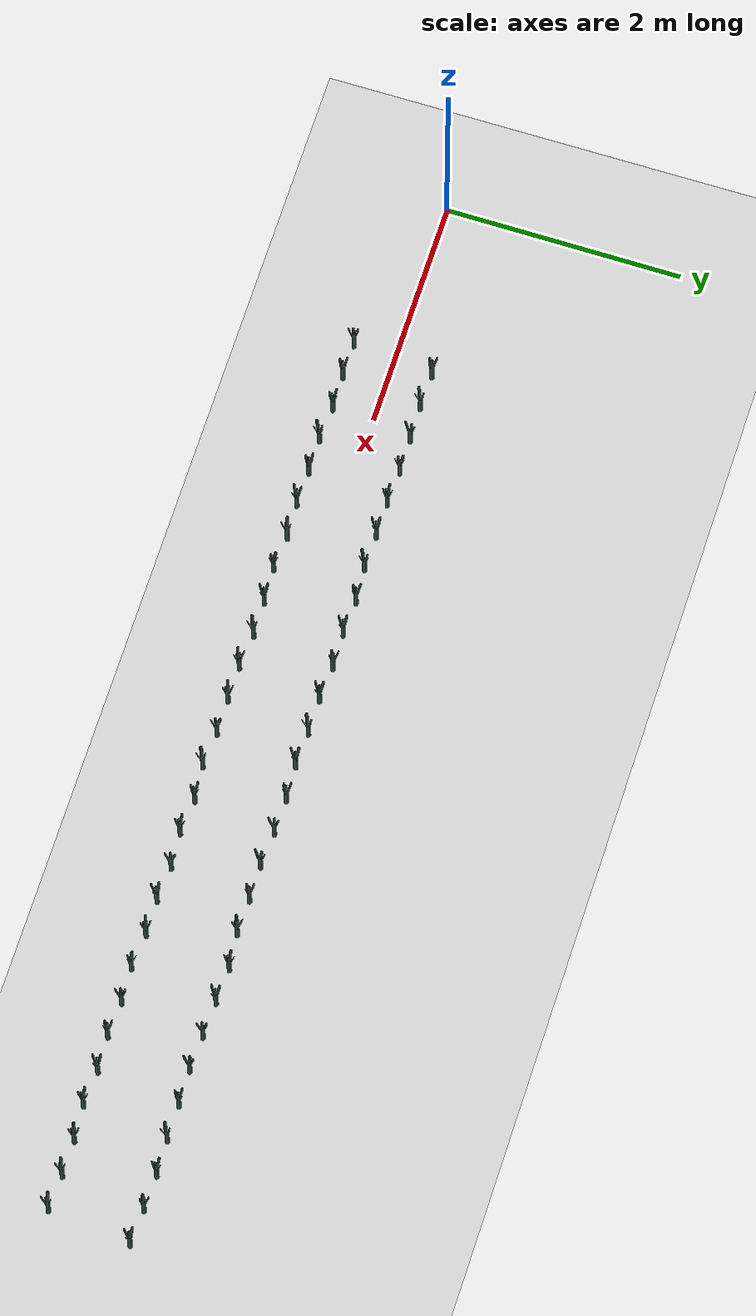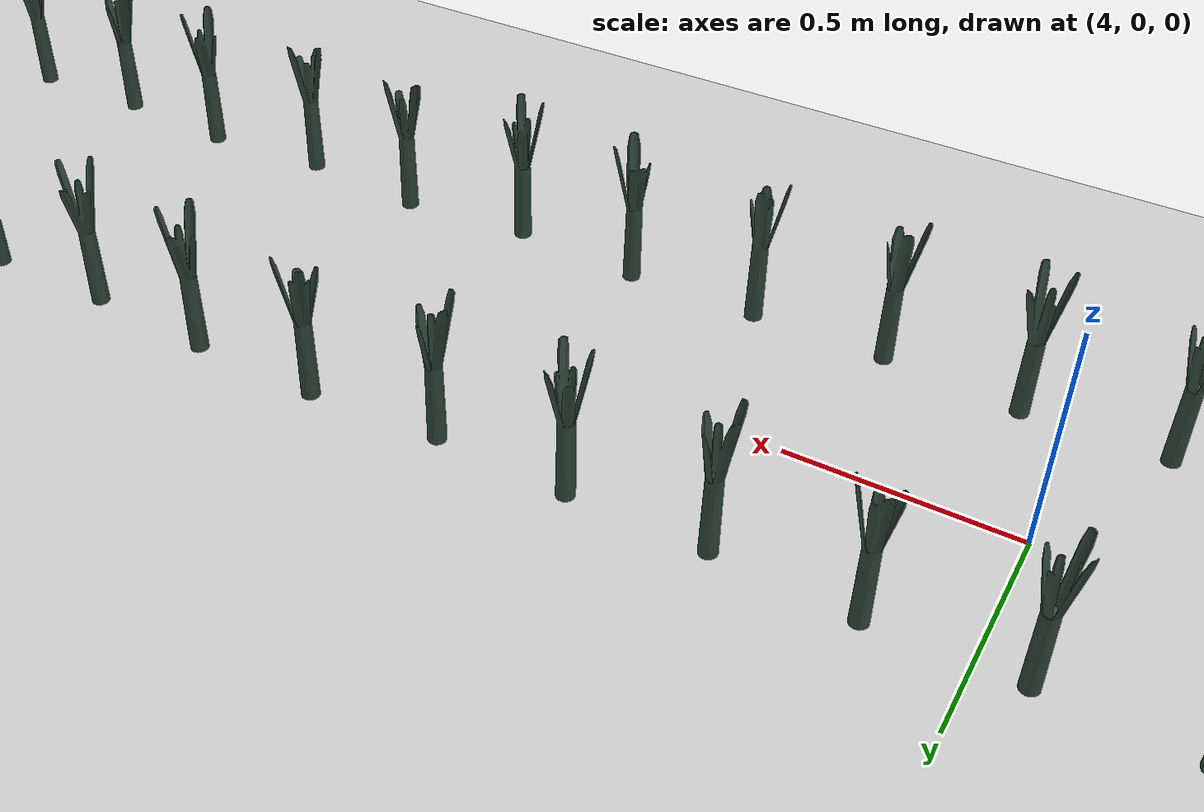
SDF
<sdf version="1.6">
 <world name="default">
  <light name="sun" type="directional">
   <pose>0 0 10 0 -0 0</pose>
   <diffuse>0.5 0.5 0.5 1</diffuse>
   <specular>0.1 0.1 0.1 1</specular>
   <attenuation>
    <range>1000</range>
    <constant>0.9</constant>
    <linear>0.01</linear>
    <quadratic>0.001</quadratic>
   </attenuation>
   <direction>0.9 0.5 -1</direction>
  </light>
  <scene><background>130 200 255 1</background><ambient>130 140 140 1</ambient></scene>
  <include><uri>model://dirt_plane</uri></include>
  <include>
   <uri>model://Leek</uri>
   <pose>1.500000 0.338203 0.15 0 0 -106.177352</pose>
   <static>0</static>
  </include>
  <include>
   <uri>model://Leek</uri>
   <pose>1.800000 0.335759 0.15 0 0 -128.173448</pose>
   <static>0</static>
  </include>
  <include><uri>model://Leek</uri><pose>2.100000 0.343522 0.15 0 0 -58.303281</pose><static>0</static></include>
  <include><uri>model://Leek</uri><pose>2.400000 0.350619 0.15 0 0 5.567956</pose><static>0</static></include>
  <include><uri>model://Leek</uri><pose>2.700000 0.339679 0.15 0 0 -92.892275</pose><static>0</static></include>
  <include><uri>model://Leek</uri><pose>3.000000 0.342616 0.15 0 0 -66.453580</pose><static>0</static></include>
  <include><uri>model://Leek</uri><pose>3.300000 0.339270 0.15 0 0 -96.566670</pose><static>0</static></include>
  <include><uri>model://Leek</uri><pose>3.600000 0.360558 0.15 0 0 95.023462</pose><static>0</static></include>
  <include><uri>model://Leek</uri><pose>3.900000 0.349597 0.15 0 0 -3.625415</pose><static>0</static></include>
  <include><uri>model://Leek</uri><pose>4.200000 0.359124 0.15 0 0 82.117546</pose><static>0</static></include>
  <include><uri>model://Leek</uri><pose>4.500000 0.342603 0.15 0 0 -66.575189</pose><static>0</static></include>
  <include><uri>model://Leek</uri><pose>4.800000 0.345530 0.15 0 0 -40.230133</pose><static>0</static></include>
  <include>
   <uri>model://Leek</uri>
   <pose>5.100000 0.336335 0.15 0 0 -122.984327</pose>
   <static>0</static>
  </include>
  <include><uri>model://Leek</uri><pose>5.400000 0.355666 0.15 0 0 50.994054</pose><static>0</static></include>
  <include><uri>model://Leek</uri><pose>5.700000 0.351935 0.15 0 0 17.411749</pose><static>0</static></include>
  <include>
   <uri>model://Leek</uri>
   <pose>6.000000 0.334449 0.15 0 0 -139.957521</pose>
   <static>0</static>
  </include>
  <include><uri>model://Leek</uri><pose>6.300000 0.339604 0.15 0 0 -93.560866</pose><static>0</static></include>
  <include>
   <uri>model://Leek</uri>
   <pose>6.600000 0.336244 0.15 0 0 -123.800199</pose>
   <static>0</static>
  </include>
  <include><uri>model://Leek</uri><pose>6.900000 0.368310 0.15 0 0 164.790423</pose><static>0</static></include>
  <include><uri>model://Leek</uri><pose>7.200000 0.356563 0.15 0 0 59.069331</pose><static>0</static></include>
  <include><uri>model://Leek</uri><pose>7.500000 0.347081 0.15 0 0 -26.268370</pose><static>0</static></include>
  <include>
   <uri>model://Leek</uri>
   <pose>7.800000 0.336570 0.15 0 0 -120.867767</pose>
   <static>0</static>
  </include>
  <include><uri>model://Leek</uri><pose>8.100000 0.346619 0.15 0 0 -30.429276</pose><static>0</static></include>
  <include><uri>model://Leek</uri><pose>8.400000 0.349020 0.15 0 0 -8.819461</pose><static>0</static></include>
  <include><uri>model://Leek</uri><pose>8.700000 0.362699 0.15 0 0 114.288836</pose><static>0</static></include>
  <include><uri>model://Leek</uri><pose>9.000000 0.357012 0.15 0 0 63.111061</pose><static>0</static></include>
  <include><uri>model://Leek</uri><pose>9.300000 0.343330 0.15 0 0 -60.030564</pose><static>0</static></include>
  <include><uri>model://Leek</uri><pose>1.423404 -0.348730 0.15 0 0 11.432664</pose><static>0</static></include>
  <include><uri>model://Leek</uri><pose>1.723404 -0.348511 0.15 0 0 13.399244</pose><static>0</static></include>
  <include>
   <uri>model://Leek</uri>
   <pose>2.023404 -0.337317 0.15 0 0 114.150415</pose>
   <static>0</static>
  </include>
  <include>
   <uri>model://Leek</uri>
   <pose>2.323404 -0.355151 0.15 0 0 -46.359815</pose>
   <static>0</static>
  </include>
  <include><uri>model://Leek</uri><pose>2.623404 -0.348501 0.15 0 0 13.490633</pose><static>0</static></include>
  <include>
   <uri>model://Leek</uri>
   <pose>2.923404 -0.355335 0.15 0 0 -48.011376</pose>
   <static>0</static>
  </include>
  <include>
   <uri>model://Leek</uri>
   <pose>3.223404 -0.337753 0.15 0 0 110.219841</pose>
   <static>0</static>
  </include>
  <include>
   <uri>model://Leek</uri>
   <pose>3.523404 -0.357725 0.15 0 0 -69.526351</pose>
   <static>0</static>
  </include>
  <include><uri>model://Leek</uri><pose>3.823404 -0.339236 0.15 0 0 96.874042</pose><static>0</static></include>
  <include>
   <uri>model://Leek</uri>
   <pose>4.123404 -0.331445 0.15 0 0 166.995890</pose>
   <static>0</static>
  </include>
  <include>
   <uri>model://Leek</uri>
   <pose>4.423404 -0.354664 0.15 0 0 -41.973472</pose>
   <static>0</static>
  </include>
  <include>
   <uri>model://Leek</uri>
   <pose>4.723404 -0.351199 0.15 0 0 -10.793275</pose>
   <static>0</static>
  </include>
  <include><uri>model://Leek</uri><pose>5.023404 -0.346613 0.15 0 0 30.482265</pose><static>0</static></include>
  <include>
   <uri>model://Leek</uri>
   <pose>5.323404 -0.367046 0.15 0 0 -153.410170</pose>
   <static>0</static>
  </include>
  <include>
   <uri>model://Leek</uri>
   <pose>5.623404 -0.335220 0.15 0 0 133.023334</pose>
   <static>0</static>
  </include>
  <include>
   <uri>model://Leek</uri>
   <pose>5.923404 -0.358928 0.15 0 0 -80.348119</pose>
   <static>0</static>
  </include>
  <include>
   <uri>model://Leek</uri>
   <pose>6.223404 -0.334782 0.15 0 0 136.965374</pose>
   <static>0</static>
  </include>
  <include>
   <uri>model://Leek</uri>
   <pose>6.523404 -0.353871 0.15 0 0 -34.838932</pose>
   <static>0</static>
  </include>
  <include><uri>model://Leek</uri><pose>6.823404 -0.345614 0.15 0 0 39.476563</pose><static>0</static></include>
  <include>
   <uri>model://Leek</uri>
   <pose>7.123404 -0.367469 0.15 0 0 -157.220590</pose>
   <static>0</static>
  </include>
  <include><uri>model://Leek</uri><pose>7.423404 -0.348739 0.15 0 0 11.349410</pose><static>0</static></include>
  <include>
   <uri>model://Leek</uri>
   <pose>7.723404 -0.363193 0.15 0 0 -118.736824</pose>
   <static>0</static>
  </include>
  <include><uri>model://Leek</uri><pose>8.023404 -0.345525 0.15 0 0 40.279164</pose><static>0</static></include>
  <include>
   <uri>model://Leek</uri>
   <pose>8.323404 -0.363110 0.15 0 0 -117.987028</pose>
   <static>0</static>
  </include>
  <include>
   <uri>model://Leek</uri>
   <pose>8.623404 -0.337240 0.15 0 0 114.843835</pose>
   <static>0</static>
  </include>
  <include>
   <uri>model://Leek</uri>
   <pose>8.923404 -0.336347 0.15 0 0 122.878436</pose>
   <static>0</static>
  </include>
  <include><uri>model://Leek</uri><pose>9.223404 -0.348933 0.15 0 0 9.598982</pose><static>0</static></include>
 </world>
</sdf>

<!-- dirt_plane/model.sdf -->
<sdf version="1.4">
<model name="dirt_plane">
  <static>true</static>
    <link name="link">
      <collision name="collision">
        <geometry>
          <plane>
            <normal>0 0 1</normal>
            <size>100 100</size>
          </plane>
        </geometry>
        <surface>
          <friction>
            <ode>
              <mu>0.99</mu>
              <mu2>0.99</mu2>
            </ode>
          </friction>
        </surface>
      </collision>
      <visual name="visual">
        <cast_shadows>false</cast_shadows>
        <geometry>
          <plane>
            <normal>0 0 1</normal>
            <size>100 100</size>
          </plane>
        </geometry>
        <material>
          <script>
            <uri>model://ground_plane/materials/scripts/my_ground_plane.material</uri>
            <uri>model://ground_plane/materials/textures</uri>
            <name>my_ground_plane/Dirt</name>
          </script>
        </material>
      </visual>
    </link>
  </model>
</sdf>

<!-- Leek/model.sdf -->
<sdf version='1.6'>
  <model name='Leek'>
    <link name='link'>
      <pose frame=''>0 0 0 0 -0 0</pose>
      <inertial>
        <mass>1</mass>
        <inertia>
          <ixx>0.145833</ixx>
          <ixy>0</ixy>
          <ixz>0</ixz>
          <iyy>0.145833</iyy>
          <iyz>0</iyz>
          <izz>0.125</izz>
        </inertia>
        <pose frame=''>0 0 0 0 -0 0</pose>
      </inertial>
      <self_collide>0</self_collide>
      <kinematic>0</kinematic>
      <gravity>1</gravity>
      <visual name='visual'>
        <geometry>
          <mesh>
            <uri>model://Leek/Poireau.dae</uri>
            <scale>1 1 1</scale>
          </mesh>
        </geometry>
        <material>
          <script>
            <name>Gazebo/Grey</name>
            <uri>file://media/materials/scripts/gazebo.material</uri>
          </script>
          <ambient>0.3 0.6 0.5 0</ambient>
          <diffuse>0.2 0.3 0.25 0</diffuse>
          <specular>0 0 0 1</specular>
          <emissive>0 0 0 1</emissive>
          <shader type='vertex'>
            <normal_map>__default__</normal_map>
          </shader>
        </material>
        <pose frame=''>0 0 -0.08 0 -0 0</pose>
        <cast_shadows>1</cast_shadows>
        <transparency>0</transparency>
      </visual>
      <collision name='collision'>
        <laser_retro>0</laser_retro>
        <max_contacts>10</max_contacts>
        <pose frame=''>0 0 0 0 -0 0</pose>
        <geometry>
          <cylinder>
            <radius>0.02</radius>
            <length>0.25</length>
          </cylinder>
        </geometry>
        <surface>
          <friction>
            <ode>
              <mu>1</mu>
              <mu2>1</mu2>
              <fdir1>0 0 0</fdir1>
              <slip1>0</slip1>
              <slip2>0</slip2>
            </ode>
            <torsional>
              <coefficient>1</coefficient>
              <patch_radius>0</patch_radius>
              <surface_radius>0</surface_radius>
              <use_patch_radius>1</use_patch_radius>
              <ode>
                <slip>0</slip>
              </ode>
            </torsional>
          </friction>
          <bounce>
            <restitution_coefficient>0</restitution_coefficient>
            <threshold>1e+06</threshold>
          </bounce>
          <contact>
            <collide_without_contact>0</collide_without_contact>
            <collide_without_contact_bitmask>1</collide_without_contact_bitmask>
            <collide_bitmask>1</collide_bitmask>
            <ode>
              <soft_cfm>0</soft_cfm>
              <soft_erp>0.2</soft_erp>
              <kp>1e+13</kp>
              <kd>1</kd>
              <max_vel>0.01</max_vel>
              <min_depth>0</min_depth>
            </ode>
            <bullet>
              <split_impulse>1</split_impulse>
              <split_impulse_penetration_threshold>-0.01</split_impulse_penetration_threshold>
              <soft_cfm>0</soft_cfm>
              <soft_erp>0.2</soft_erp>
              <kp>1e+13</kp>
              <kd>1</kd>
            </bullet>
          </contact>
        </surface>
      </collision>
    </link>
    <static>0</static>
    <allow_auto_disable>1</allow_auto_disable>
  </model>
</sdf>
